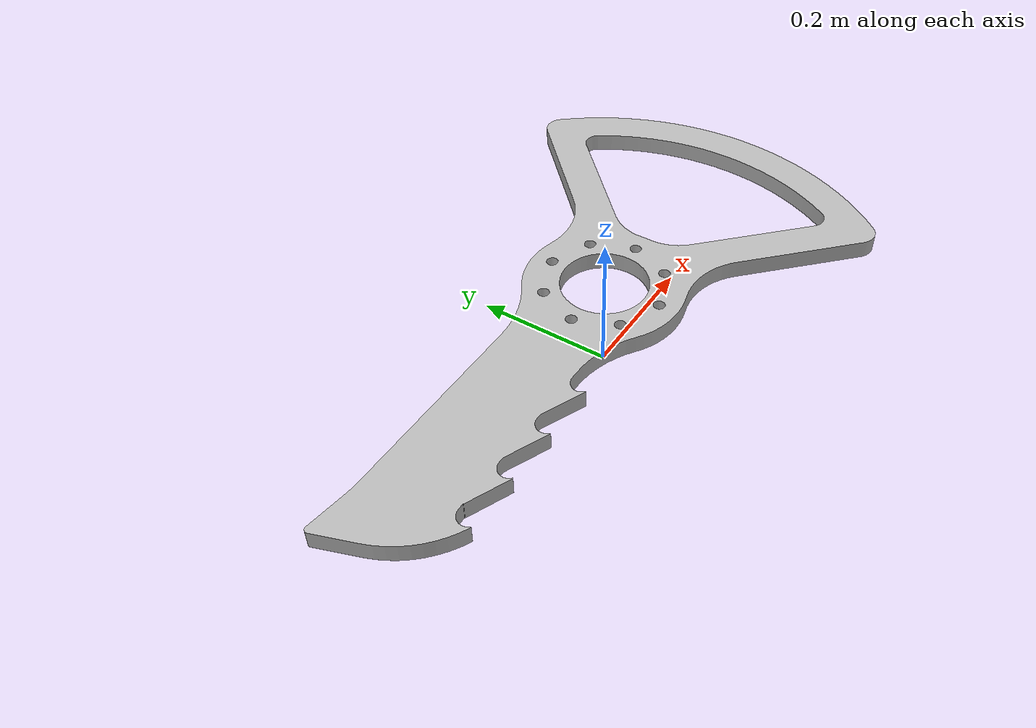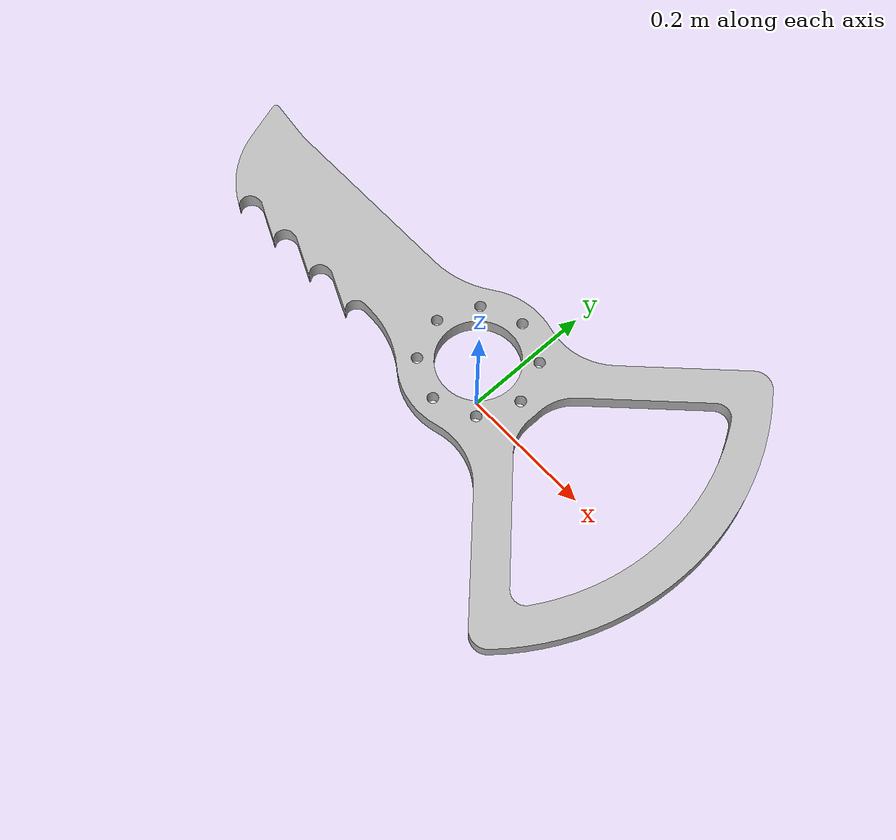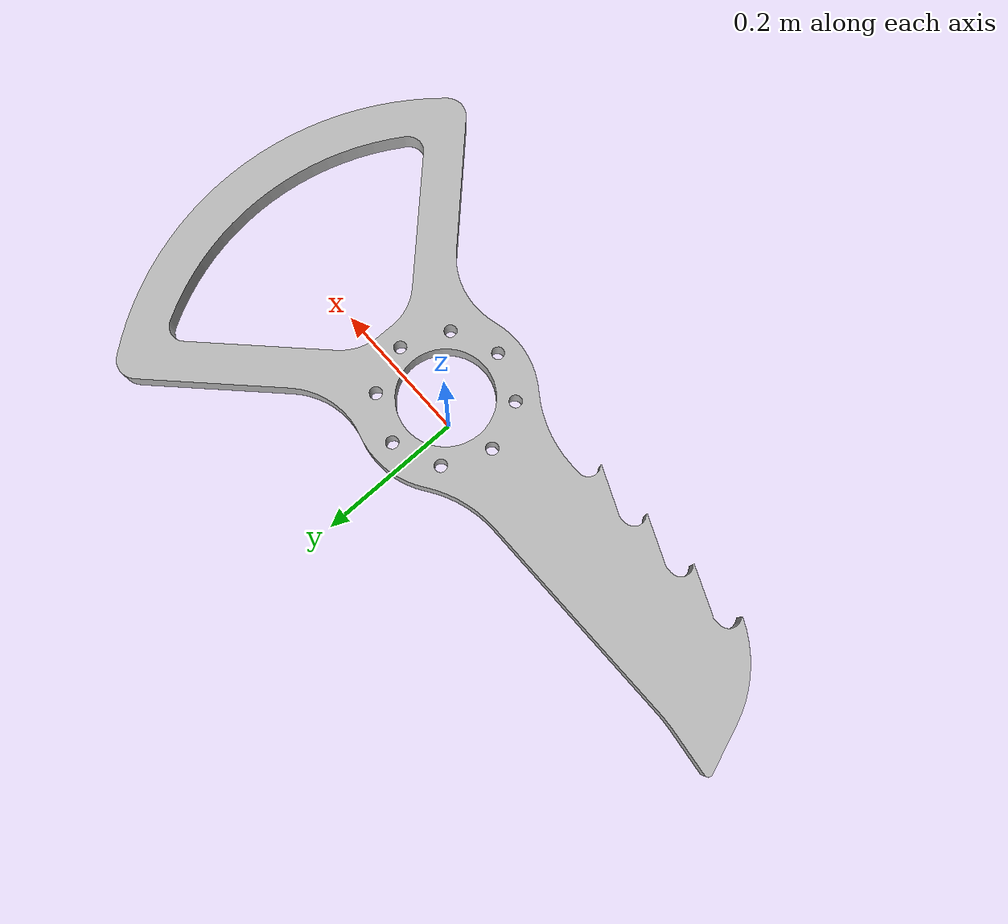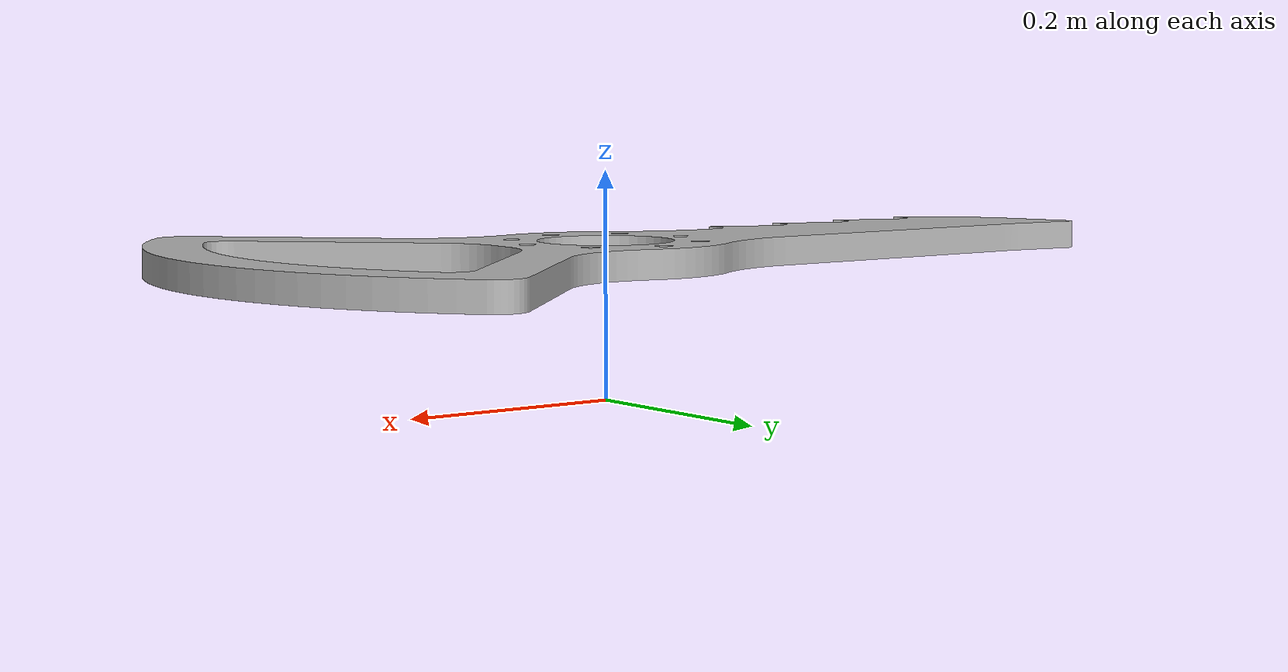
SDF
<?xml version='1.0'?>
<sdf version="1.6">
  <model name="spinner">
    <link name="spinner_link">
      <pose>0 0 0.1143 1.5708 0 0</pose>
      <inertial>
        <mass>25.521</mass>
        <inertia>
          <ixx>0.287</ixx>
          <ixy>0</ixy>
          <ixz>0</ixz>
          <iyy>2.068</iyy>
          <iyz>0</iyz>
          <izz>1.784</izz>
        </inertia>
      </inertial>
      <collision name="spinner_collision">
        <geometry>
          <mesh>
            <uri>file://meshes/BSWeaponAsym.stl</uri>
            <scale>0.001 0.001 0.001</scale>
          </mesh>
        </geometry>
      </collision>
      <visual name="spinner_visual">
        <geometry>
          <mesh>
            <uri>file://meshes/BSWeaponAsym.stl</uri>
            <scale>0.001 0.001 0.001</scale>
          </mesh>
        </geometry>
      </visual>
      <sensor name='spinner_imu' type='imu'>
      </sensor>
    </link>
  </model>
</sdf>
